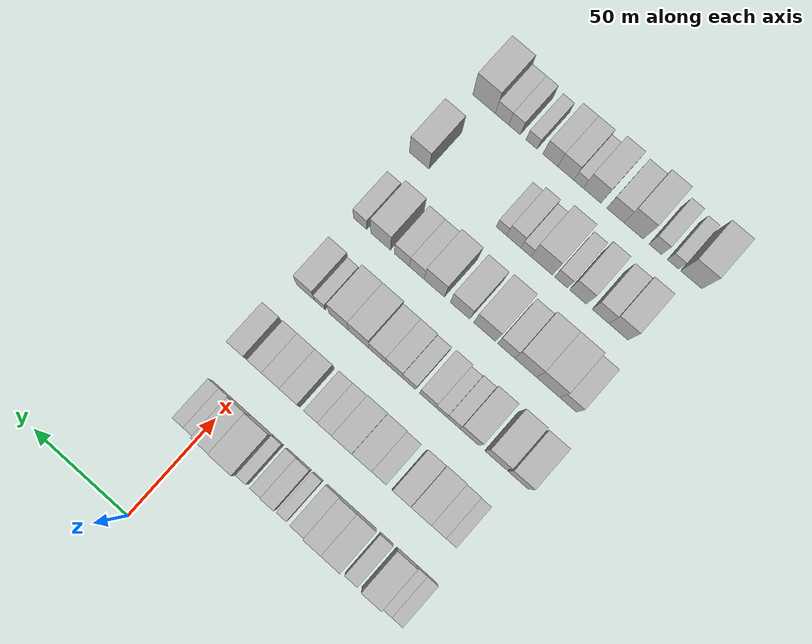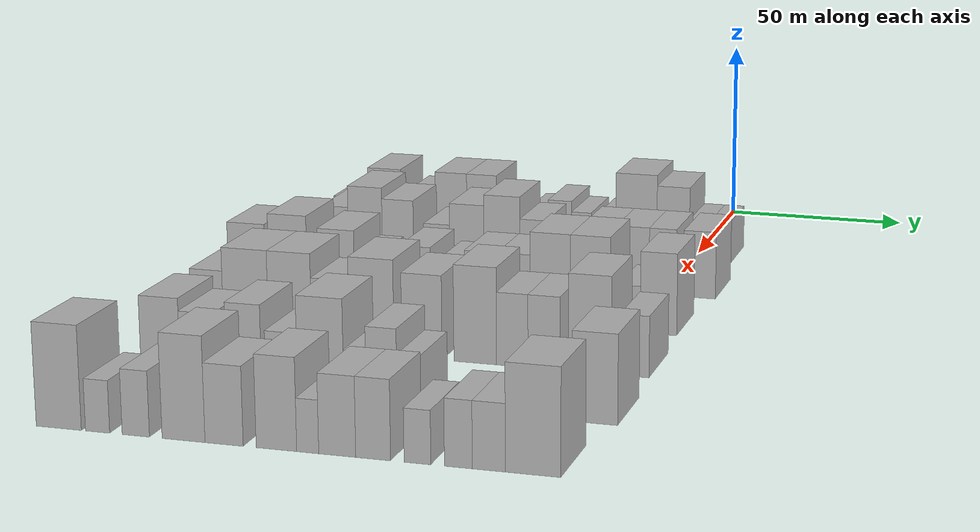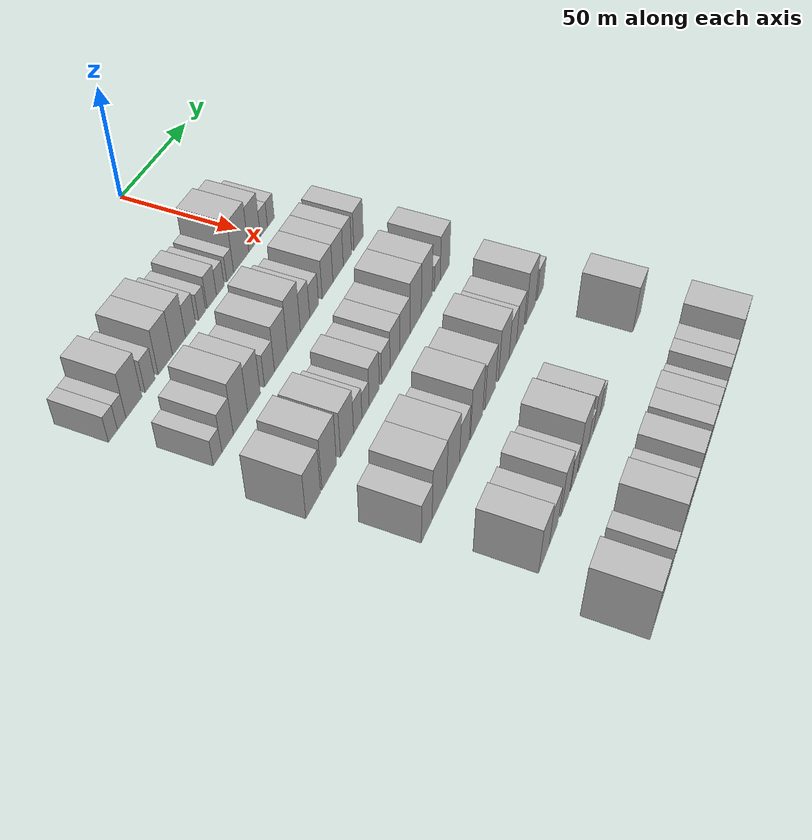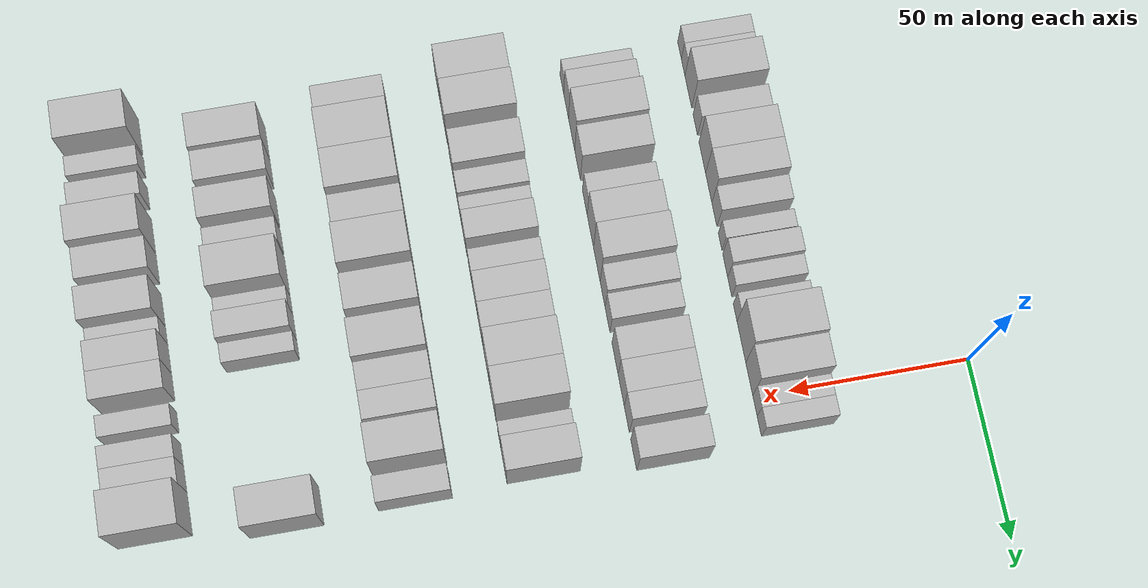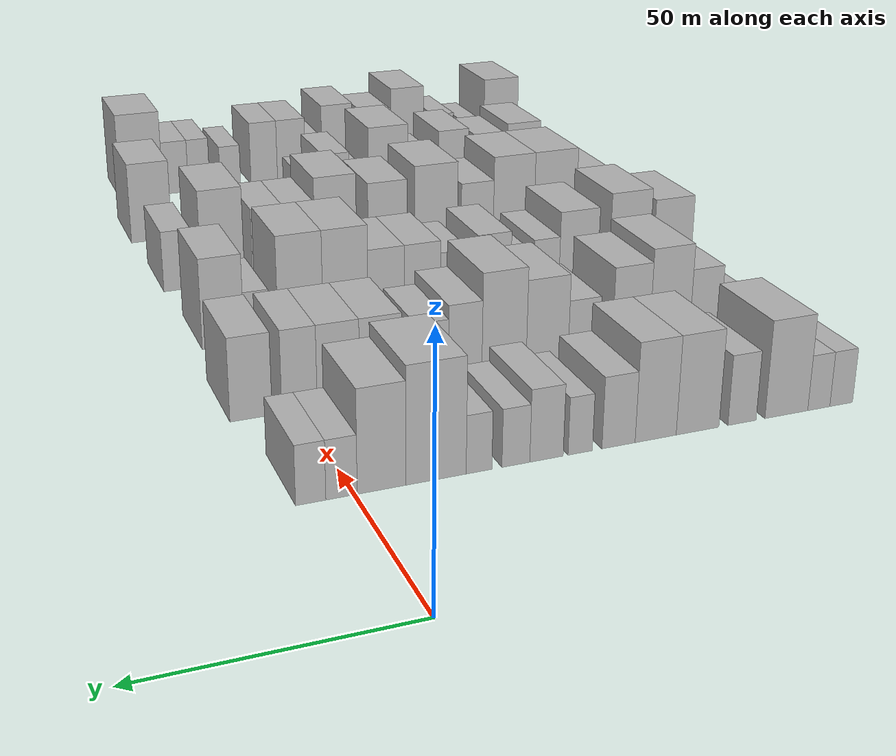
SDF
<sdf version="1.6">
 <world name="default">
  <model name="building_51">
   <static>1</static>
   <pose>50.0000 -102.8094 0 0.000000 0.000000 0.000000</pose>
   <link name="link">
    <pose>0 0 6.00 0 0 0</pose>
    <collision name="collision"><geometry><box><size>20.0000 5.3729 12.0000</size></box></geometry></collision>
    <visual name="visual">
     <cast_shadows>0</cast_shadows>
     <geometry><box><size>20.0000 5.3729 12.0000</size></box></geometry>
     <material>
      <script>
       <uri>model://HANNAS_wall/materials/scripts</uri>
       <uri>model://HANNAS_wall/materials/textures</uri>
       <name>vrc/HANNAS_wall</name>
      </script>
     </material>
    </visual>
   </link>
  </model>
  <model name="building_52">
   <static>1</static>
   <pose>50.0000 -97.5383 0 0.000000 0.000000 0.000000</pose>
   <link name="link">
    <pose>0 0 6.00 0 0 0</pose>
    <collision name="collision"><geometry><box><size>20.0000 5.1693 12.0000</size></box></geometry></collision>
    <visual name="visual">
     <cast_shadows>0</cast_shadows>
     <geometry><box><size>20.0000 5.1693 12.0000</size></box></geometry>
     <material>
      <script>
       <uri>model://HANNAS_wall/materials/scripts</uri>
       <uri>model://HANNAS_wall/materials/textures</uri>
       <name>vrc/HANNAS_wall</name>
      </script>
     </material>
    </visual>
   </link>
  </model>
  <model name="building_53">
   <static>1</static>
   <pose>50.0000 -90.0143 0 0.000000 0.000000 0.000000</pose>
   <link name="link">
    <pose>0 0 10.50 0 0 0</pose>
    <collision name="collision"><geometry><box><size>20.0000 9.8788 21.0000</size></box></geometry></collision>
    <visual name="visual">
     <cast_shadows>0</cast_shadows>
     <geometry><box><size>20.0000 9.8788 21.0000</size></box></geometry>
     <material>
      <script>
       <uri>model://HANNAS_wall/materials/scripts</uri>
       <uri>model://HANNAS_wall/materials/textures</uri>
       <name>vrc/HANNAS_wall</name>
      </script>
     </material>
    </visual>
   </link>
  </model>
  <model name="building_54">
   <static>1</static>
   <pose>50.0000 -79.8948 0 0.000000 0.000000 0.000000</pose>
   <link name="link">
    <pose>0 0 7.50 0 0 0</pose>
    <collision name="collision"><geometry><box><size>20.0000 6.3601 15.0000</size></box></geometry></collision>
    <visual name="visual">
     <cast_shadows>0</cast_shadows>
     <geometry><box><size>20.0000 6.3601 15.0000</size></box></geometry>
     <material>
      <script>
       <uri>model://HANNAS_wall/materials/scripts</uri>
       <uri>model://HANNAS_wall/materials/textures</uri>
       <name>vrc/HANNAS_wall</name>
      </script>
     </material>
    </visual>
   </link>
  </model>
  <model name="building_55">
   <static>1</static>
   <pose>50.0000 -69.9966 0 0.000000 0.000000 0.000000</pose>
   <link name="link">
    <pose>0 0 10.50 0 0 0</pose>
    <collision name="collision"><geometry><box><size>20.0000 9.4364 21.0000</size></box></geometry></collision>
    <visual name="visual">
     <cast_shadows>0</cast_shadows>
     <geometry><box><size>20.0000 9.4364 21.0000</size></box></geometry>
     <material>
      <script>
       <uri>model://HANNAS_wall/materials/scripts</uri>
       <uri>model://HANNAS_wall/materials/textures</uri>
       <name>vrc/HANNAS_wall</name>
      </script>
     </material>
    </visual>
   </link>
  </model>
  <model name="building_56">
   <static>1</static>
   <pose>50.0000 -60.8362 0 0.000000 0.000000 0.000000</pose>
   <link name="link">
    <pose>0 0 10.50 0 0 0</pose>
    <collision name="collision"><geometry><box><size>20.0000 8.8844 21.0000</size></box></geometry></collision>
    <visual name="visual">
     <cast_shadows>0</cast_shadows>
     <geometry><box><size>20.0000 8.8844 21.0000</size></box></geometry>
     <material>
      <script>
       <uri>model://HANNAS_wall/materials/scripts</uri>
       <uri>model://HANNAS_wall/materials/textures</uri>
       <name>vrc/HANNAS_wall</name>
      </script>
     </material>
    </visual>
   </link>
  </model>
  <model name="building_57">
   <static>1</static>
   <pose>50.0000 -52.8686 0 0.000000 0.000000 0.000000</pose>
   <link name="link">
    <pose>0 0 7.50 0 0 0</pose>
    <collision name="collision"><geometry><box><size>20.0000 7.0507 15.0000</size></box></geometry></collision>
    <visual name="visual">
     <cast_shadows>0</cast_shadows>
     <geometry><box><size>20.0000 7.0507 15.0000</size></box></geometry>
     <material>
      <script>
       <uri>model://HANNAS_wall/materials/scripts</uri>
       <uri>model://HANNAS_wall/materials/textures</uri>
       <name>vrc/HANNAS_wall</name>
      </script>
     </material>
    </visual>
   </link>
  </model>
  <model name="building_58">
   <static>1</static>
   <pose>50.0000 -44.7985 0 0.000000 0.000000 0.000000</pose>
   <link name="link">
    <pose>0 0 6.00 0 0 0</pose>
    <collision name="collision"><geometry><box><size>20.0000 5.0895 12.0000</size></box></geometry></collision>
    <visual name="visual">
     <cast_shadows>0</cast_shadows>
     <geometry><box><size>20.0000 5.0895 12.0000</size></box></geometry>
     <material>
      <script>
       <uri>model://HANNAS_wall/materials/scripts</uri>
       <uri>model://HANNAS_wall/materials/textures</uri>
       <name>vrc/HANNAS_wall</name>
      </script>
     </material>
    </visual>
   </link>
  </model>
  <model name="building_59">
   <static>1</static>
   <pose>50.0000 -37.8196 0 0.000000 0.000000 0.000000</pose>
   <link name="link">
    <pose>0 0 7.50 0 0 0</pose>
    <collision name="collision"><geometry><box><size>20.0000 6.8684 15.0000</size></box></geometry></collision>
    <visual name="visual">
     <cast_shadows>0</cast_shadows>
     <geometry><box><size>20.0000 6.8684 15.0000</size></box></geometry>
     <material>
      <script>
       <uri>model://HANNAS_wall/materials/scripts</uri>
       <uri>model://HANNAS_wall/materials/textures</uri>
       <name>vrc/HANNAS_wall</name>
      </script>
     </material>
    </visual>
   </link>
  </model>
  <model name="building_60">
   <static>1</static>
   <pose>50.0000 -31.5643 0 0.000000 0.000000 0.000000</pose>
   <link name="link">
    <pose>0 0 6.00 0 0 0</pose>
    <collision name="collision"><geometry><box><size>20.0000 5.6422 12.0000</size></box></geometry></collision>
    <visual name="visual">
     <cast_shadows>0</cast_shadows>
     <geometry><box><size>20.0000 5.6422 12.0000</size></box></geometry>
     <material>
      <script>
       <uri>model://HANNAS_wall/materials/scripts</uri>
       <uri>model://HANNAS_wall/materials/textures</uri>
       <name>vrc/HANNAS_wall</name>
      </script>
     </material>
    </visual>
   </link>
  </model>
  <model name="building_61">
   <static>1</static>
   <pose>50.0000 -24.1740 0 0.000000 0.000000 0.000000</pose>
   <link name="link">
    <pose>0 0 6.00 0 0 0</pose>
    <collision name="collision"><geometry><box><size>20.0000 5.1384 12.0000</size></box></geometry></collision>
    <visual name="visual">
     <cast_shadows>0</cast_shadows>
     <geometry><box><size>20.0000 5.1384 12.0000</size></box></geometry>
     <material>
      <script>
       <uri>model://HANNAS_wall/materials/scripts</uri>
       <uri>model://HANNAS_wall/materials/textures</uri>
       <name>vrc/HANNAS_wall</name>
      </script>
     </material>
    </visual>
   </link>
  </model>
  <model name="building_62">
   <static>1</static>
   <pose>50.0000 -15.7153 0 0.000000 0.000000 0.000000</pose>
   <link name="link">
    <pose>0 0 12.00 0 0 0</pose>
    <collision name="collision"><geometry><box><size>20.0000 11.7789 24.0000</size></box></geometry></collision>
    <visual name="visual">
     <cast_shadows>0</cast_shadows>
     <geometry><box><size>20.0000 11.7789 24.0000</size></box></geometry>
     <material>
      <script>
       <uri>model://HANNAS_wall/materials/scripts</uri>
       <uri>model://HANNAS_wall/materials/textures</uri>
       <name>vrc/HANNAS_wall</name>
      </script>
     </material>
    </visual>
   </link>
  </model>
  <model name="building_63">
   <static>1</static>
   <pose>50.0000 -5.1954 0 0.000000 0.000000 0.000000</pose>
   <link name="link">
    <pose>0 0 10.50 0 0 0</pose>
    <collision name="collision"><geometry><box><size>20.0000 9.2609 21.0000</size></box></geometry></collision>
    <visual name="visual">
     <cast_shadows>0</cast_shadows>
     <geometry><box><size>20.0000 9.2609 21.0000</size></box></geometry>
     <material>
      <script>
       <uri>model://HANNAS_wall/materials/scripts</uri>
       <uri>model://HANNAS_wall/materials/textures</uri>
       <name>vrc/HANNAS_wall</name>
      </script>
     </material>
    </visual>
   </link>
  </model>
  <model name="building_64">
   <static>1</static>
   <pose>50.0000 2.3669 0 0.000000 0.000000 0.000000</pose>
   <link name="link">
    <pose>0 0 6.00 0 0 0</pose>
    <collision name="collision"><geometry><box><size>20.0000 5.8637 12.0000</size></box></geometry></collision>
    <visual name="visual">
     <cast_shadows>0</cast_shadows>
     <geometry><box><size>20.0000 5.8637 12.0000</size></box></geometry>
     <material>
      <script>
       <uri>model://HANNAS_wall/materials/scripts</uri>
       <uri>model://HANNAS_wall/materials/textures</uri>
       <name>vrc/HANNAS_wall</name>
      </script>
     </material>
    </visual>
   </link>
  </model>
  <model name="building_65">
   <static>1</static>
   <pose>50.0000 8.0992 0 0.000000 0.000000 0.000000</pose>
   <link name="link">
    <pose>0 0 6.00 0 0 0</pose>
    <collision name="collision"><geometry><box><size>20.0000 5.6008 12.0000</size></box></geometry></collision>
    <visual name="visual">
     <cast_shadows>0</cast_shadows>
     <geometry><box><size>20.0000 5.6008 12.0000</size></box></geometry>
     <material>
      <script>
       <uri>model://HANNAS_wall/materials/scripts</uri>
       <uri>model://HANNAS_wall/materials/textures</uri>
       <name>vrc/HANNAS_wall</name>
      </script>
     </material>
    </visual>
   </link>
  </model>
  <model name="building_177">
   <static>1</static>
   <pose>85.0000 -98.4689 0 0.000000 0.000000 0.000000</pose>
   <link name="link">
    <pose>0 0 6.00 0 0 0</pose>
    <collision name="collision"><geometry><box><size>20.0000 5.6673 12.0000</size></box></geometry></collision>
    <visual name="visual">
     <cast_shadows>0</cast_shadows>
     <geometry><box><size>20.0000 5.6673 12.0000</size></box></geometry>
     <material>
      <script>
       <uri>model://HANNAS_wall/materials/scripts</uri>
       <uri>model://HANNAS_wall/materials/textures</uri>
       <name>vrc/HANNAS_wall</name>
      </script>
     </material>
    </visual>
   </link>
  </model>
  <model name="building_178">
   <static>1</static>
   <pose>85.0000 -91.8178 0 0.000000 0.000000 0.000000</pose>
   <link name="link">
    <pose>0 0 9.00 0 0 0</pose>
    <collision name="collision"><geometry><box><size>20.0000 7.6349 18.0000</size></box></geometry></collision>
    <visual name="visual">
     <cast_shadows>0</cast_shadows>
     <geometry><box><size>20.0000 7.6349 18.0000</size></box></geometry>
     <material>
      <script>
       <uri>model://HANNAS_wall/materials/scripts</uri>
       <uri>model://HANNAS_wall/materials/textures</uri>
       <name>vrc/HANNAS_wall</name>
      </script>
     </material>
    </visual>
   </link>
  </model>
  <model name="building_179">
   <static>1</static>
   <pose>85.0000 -83.1043 0 0.000000 0.000000 0.000000</pose>
   <link name="link">
    <pose>0 0 12.00 0 0 0</pose>
    <collision name="collision"><geometry><box><size>20.0000 9.7921 24.0000</size></box></geometry></collision>
    <visual name="visual">
     <cast_shadows>0</cast_shadows>
     <geometry><box><size>20.0000 9.7921 24.0000</size></box></geometry>
     <material>
      <script>
       <uri>model://HANNAS_wall/materials/scripts</uri>
       <uri>model://HANNAS_wall/materials/textures</uri>
       <name>vrc/HANNAS_wall</name>
      </script>
     </material>
    </visual>
   </link>
  </model>
  <model name="building_180">
   <static>1</static>
   <pose>85.0000 -73.7333 0 0.000000 0.000000 0.000000</pose>
   <link name="link">
    <pose>0 0 10.50 0 0 0</pose>
    <collision name="collision"><geometry><box><size>20.0000 8.9498 21.0000</size></box></geometry></collision>
    <visual name="visual">
     <cast_shadows>0</cast_shadows>
     <geometry><box><size>20.0000 8.9498 21.0000</size></box></geometry>
     <material>
      <script>
       <uri>model://HANNAS_wall/materials/scripts</uri>
       <uri>model://HANNAS_wall/materials/textures</uri>
       <name>vrc/HANNAS_wall</name>
      </script>
     </material>
    </visual>
   </link>
  </model>
  <model name="building_181">
   <static>1</static>
   <pose>85.0000 -62.6039 0 0.000000 0.000000 0.000000</pose>
   <link name="link">
    <pose>0 0 7.50 0 0 0</pose>
    <collision name="collision"><geometry><box><size>20.0000 7.3091 15.0000</size></box></geometry></collision>
    <visual name="visual">
     <cast_shadows>0</cast_shadows>
     <geometry><box><size>20.0000 7.3091 15.0000</size></box></geometry>
     <material>
      <script>
       <uri>model://HANNAS_wall/materials/scripts</uri>
       <uri>model://HANNAS_wall/materials/textures</uri>
       <name>vrc/HANNAS_wall</name>
      </script>
     </material>
    </visual>
   </link>
  </model>
  <model name="building_182">
   <static>1</static>
   <pose>85.0000 -54.1118 0 0.000000 0.000000 0.000000</pose>
   <link name="link">
    <pose>0 0 10.50 0 0 0</pose>
    <collision name="collision"><geometry><box><size>20.0000 9.6751 21.0000</size></box></geometry></collision>
    <visual name="visual">
     <cast_shadows>0</cast_shadows>
     <geometry><box><size>20.0000 9.6751 21.0000</size></box></geometry>
     <material>
      <script>
       <uri>model://HANNAS_wall/materials/scripts</uri>
       <uri>model://HANNAS_wall/materials/textures</uri>
       <name>vrc/HANNAS_wall</name>
      </script>
     </material>
    </visual>
   </link>
  </model>
  <model name="building_183">
   <static>1</static>
   <pose>85.0000 -44.2620 0 0.000000 0.000000 0.000000</pose>
   <link name="link">
    <pose>0 0 12.00 0 0 0</pose>
    <collision name="collision"><geometry><box><size>20.0000 10.0246 24.0000</size></box></geometry></collision>
    <visual name="visual">
     <cast_shadows>0</cast_shadows>
     <geometry><box><size>20.0000 10.0246 24.0000</size></box></geometry>
     <material>
      <script>
       <uri>model://HANNAS_wall/materials/scripts</uri>
       <uri>model://HANNAS_wall/materials/textures</uri>
       <name>vrc/HANNAS_wall</name>
      </script>
     </material>
    </visual>
   </link>
  </model>
  <model name="building_184">
   <static>1</static>
   <pose>85.0000 -35.5402 0 0.000000 0.000000 0.000000</pose>
   <link name="link">
    <pose>0 0 9.00 0 0 0</pose>
    <collision name="collision"><geometry><box><size>20.0000 7.4190 18.0000</size></box></geometry></collision>
    <visual name="visual">
     <cast_shadows>0</cast_shadows>
     <geometry><box><size>20.0000 7.4190 18.0000</size></box></geometry>
     <material>
      <script>
       <uri>model://HANNAS_wall/materials/scripts</uri>
       <uri>model://HANNAS_wall/materials/textures</uri>
       <name>vrc/HANNAS_wall</name>
      </script>
     </material>
    </visual>
   </link>
  </model>
  <model name="building_185">
   <static>1</static>
   <pose>85.0000 -28.2389 0 0.000000 0.000000 0.000000</pose>
   <link name="link">
    <pose>0 0 7.50 0 0 0</pose>
    <collision name="collision"><geometry><box><size>20.0000 7.1835 15.0000</size></box></geometry></collision>
    <visual name="visual">
     <cast_shadows>0</cast_shadows>
     <geometry><box><size>20.0000 7.1835 15.0000</size></box></geometry>
     <material>
      <script>
       <uri>model://HANNAS_wall/materials/scripts</uri>
       <uri>model://HANNAS_wall/materials/textures</uri>
       <name>vrc/HANNAS_wall</name>
      </script>
     </material>
    </visual>
   </link>
  </model>
  <model name="building_186">
   <static>1</static>
   <pose>85.0000 -17.1510 0 0.000000 0.000000 0.000000</pose>
   <link name="link">
    <pose>0 0 9.00 0 0 0</pose>
    <collision name="collision"><geometry><box><size>20.0000 8.9924 18.0000</size></box></geometry></collision>
    <visual name="visual">
     <cast_shadows>0</cast_shadows>
     <geometry><box><size>20.0000 8.9924 18.0000</size></box></geometry>
     <material>
      <script>
       <uri>model://HANNAS_wall/materials/scripts</uri>
       <uri>model://HANNAS_wall/materials/textures</uri>
       <name>vrc/HANNAS_wall</name>
      </script>
     </material>
    </visual>
   </link>
  </model>
  <model name="building_187">
   <static>1</static>
   <pose>85.0000 -8.1791 0 0.000000 0.000000 0.000000</pose>
   <link name="link">
    <pose>0 0 9.00 0 0 0</pose>
    <collision name="collision"><geometry><box><size>20.0000 8.9515 18.0000</size></box></geometry></collision>
    <visual name="visual">
     <cast_shadows>0</cast_shadows>
     <geometry><box><size>20.0000 8.9515 18.0000</size></box></geometry>
     <material>
      <script>
       <uri>model://HANNAS_wall/materials/scripts</uri>
       <uri>model://HANNAS_wall/materials/textures</uri>
       <name>vrc/HANNAS_wall</name>
      </script>
     </material>
    </visual>
   </link>
  </model>
  <model name="building_188">
   <static>1</static>
   <pose>85.0000 -0.0435 0 0.000000 0.000000 0.000000</pose>
   <link name="link">
    <pose>0 0 9.00 0 0 0</pose>
    <collision name="collision"><geometry><box><size>20.0000 7.3195 18.0000</size></box></geometry></collision>
    <visual name="visual">
     <cast_shadows>0</cast_shadows>
     <geometry><box><size>20.0000 7.3195 18.0000</size></box></geometry>
     <material>
      <script>
       <uri>model://HANNAS_wall/materials/scripts</uri>
       <uri>model://HANNAS_wall/materials/textures</uri>
       <name>vrc/HANNAS_wall</name>
      </script>
     </material>
    </visual>
   </link>
  </model>
  <model name="building_189">
   <static>1</static>
   <pose>85.0000 9.8961 0 0.000000 0.000000 0.000000</pose>
   <link name="link">
    <pose>0 0 9.00 0 0 0</pose>
    <collision name="collision"><geometry><box><size>20.0000 8.5598 18.0000</size></box></geometry></collision>
    <visual name="visual">
     <cast_shadows>0</cast_shadows>
     <geometry><box><size>20.0000 8.5598 18.0000</size></box></geometry>
     <material>
      <script>
       <uri>model://HANNAS_wall/materials/scripts</uri>
       <uri>model://HANNAS_wall/materials/textures</uri>
       <name>vrc/HANNAS_wall</name>
      </script>
     </material>
    </visual>
   </link>
  </model>
  <model name="building_302">
   <static>1</static>
   <pose>120.0000 -103.1380 0 0.000000 0.000000 0.000000</pose>
   <link name="link">
    <pose>0 0 10.50 0 0 0</pose>
    <collision name="collision"><geometry><box><size>20.0000 10.3689 21.0000</size></box></geometry></collision>
    <visual name="visual">
     <cast_shadows>0</cast_shadows>
     <geometry><box><size>20.0000 10.3689 21.0000</size></box></geometry>
     <material>
      <script>
       <uri>model://HANNAS_wall/materials/scripts</uri>
       <uri>model://HANNAS_wall/materials/textures</uri>
       <name>vrc/HANNAS_wall</name>
      </script>
     </material>
    </visual>
   </link>
  </model>
  <model name="building_303">
   <static>1</static>
   <pose>120.0000 -91.6294 0 0.000000 0.000000 0.000000</pose>
   <link name="link">
    <pose>0 0 12.00 0 0 0</pose>
    <collision name="collision"><geometry><box><size>20.0000 10.6484 24.0000</size></box></geometry></collision>
    <visual name="visual">
     <cast_shadows>0</cast_shadows>
     <geometry><box><size>20.0000 10.6484 24.0000</size></box></geometry>
     <material>
      <script>
       <uri>model://HANNAS_wall/materials/scripts</uri>
       <uri>model://HANNAS_wall/materials/textures</uri>
       <name>vrc/HANNAS_wall</name>
      </script>
     </material>
    </visual>
   </link>
  </model>
  <model name="building_304">
   <static>1</static>
   <pose>120.0000 -78.3010 0 0.000000 0.000000 0.000000</pose>
   <link name="link">
    <pose>0 0 10.50 0 0 0</pose>
    <collision name="collision"><geometry><box><size>20.0000 10.0083 21.0000</size></box></geometry></collision>
    <visual name="visual">
     <cast_shadows>0</cast_shadows>
     <geometry><box><size>20.0000 10.0083 21.0000</size></box></geometry>
     <material>
      <script>
       <uri>model://HANNAS_wall/materials/scripts</uri>
       <uri>model://HANNAS_wall/materials/textures</uri>
       <name>vrc/HANNAS_wall</name>
      </script>
     </material>
    </visual>
   </link>
  </model>
  <model name="building_305">
   <static>1</static>
   <pose>120.0000 -70.0165 0 0.000000 0.000000 0.000000</pose>
   <link name="link">
    <pose>0 0 7.50 0 0 0</pose>
    <collision name="collision"><geometry><box><size>20.0000 6.5608 15.0000</size></box></geometry></collision>
    <visual name="visual">
     <cast_shadows>0</cast_shadows>
     <geometry><box><size>20.0000 6.5608 15.0000</size></box></geometry>
     <material>
      <script>
       <uri>model://HANNAS_wall/materials/scripts</uri>
       <uri>model://HANNAS_wall/materials/textures</uri>
       <name>vrc/HANNAS_wall</name>
      </script>
     </material>
    </visual>
   </link>
  </model>
  <model name="building_306">
   <static>1</static>
   <pose>120.0000 -63.8612 0 0.000000 0.000000 0.000000</pose>
   <link name="link">
    <pose>0 0 6.00 0 0 0</pose>
    <collision name="collision"><geometry><box><size>20.0000 5.7497 12.0000</size></box></geometry></collision>
    <visual name="visual">
     <cast_shadows>0</cast_shadows>
     <geometry><box><size>20.0000 5.7497 12.0000</size></box></geometry>
     <material>
      <script>
       <uri>model://HANNAS_wall/materials/scripts</uri>
       <uri>model://HANNAS_wall/materials/textures</uri>
       <name>vrc/HANNAS_wall</name>
      </script>
     </material>
    </visual>
   </link>
  </model>
  <model name="building_307">
   <static>1</static>
   <pose>120.0000 -56.8331 0 0.000000 0.000000 0.000000</pose>
   <link name="link">
    <pose>0 0 9.00 0 0 0</pose>
    <collision name="collision"><geometry><box><size>20.0000 8.3064 18.0000</size></box></geometry></collision>
    <visual name="visual">
     <cast_shadows>0</cast_shadows>
     <geometry><box><size>20.0000 8.3064 18.0000</size></box></geometry>
     <material>
      <script>
       <uri>model://HANNAS_wall/materials/scripts</uri>
       <uri>model://HANNAS_wall/materials/textures</uri>
       <name>vrc/HANNAS_wall</name>
      </script>
     </material>
    </visual>
   </link>
  </model>
  <model name="building_308">
   <static>1</static>
   <pose>120.0000 -47.1282 0 0.000000 0.000000 0.000000</pose>
   <link name="link">
    <pose>0 0 7.50 0 0 0</pose>
    <collision name="collision"><geometry><box><size>20.0000 7.1034 15.0000</size></box></geometry></collision>
    <visual name="visual">
     <cast_shadows>0</cast_shadows>
     <geometry><box><size>20.0000 7.1034 15.0000</size></box></geometry>
     <material>
      <script>
       <uri>model://HANNAS_wall/materials/scripts</uri>
       <uri>model://HANNAS_wall/materials/textures</uri>
       <name>vrc/HANNAS_wall</name>
      </script>
     </material>
    </visual>
   </link>
  </model>
  <model name="building_309">
   <static>1</static>
   <pose>120.0000 -39.2617 0 0.000000 0.000000 0.000000</pose>
   <link name="link">
    <pose>0 0 9.00 0 0 0</pose>
    <collision name="collision"><geometry><box><size>20.0000 8.6298 18.0000</size></box></geometry></collision>
    <visual name="visual">
     <cast_shadows>0</cast_shadows>
     <geometry><box><size>20.0000 8.6298 18.0000</size></box></geometry>
     <material>
      <script>
       <uri>model://HANNAS_wall/materials/scripts</uri>
       <uri>model://HANNAS_wall/materials/textures</uri>
       <name>vrc/HANNAS_wall</name>
      </script>
     </material>
    </visual>
   </link>
  </model>
  <model name="building_310">
   <static>1</static>
   <pose>120.0000 -30.5913 0 0.000000 0.000000 0.000000</pose>
   <link name="link">
    <pose>0 0 9.00 0 0 0</pose>
    <collision name="collision"><geometry><box><size>20.0000 8.7109 18.0000</size></box></geometry></collision>
    <visual name="visual">
     <cast_shadows>0</cast_shadows>
     <geometry><box><size>20.0000 8.7109 18.0000</size></box></geometry>
     <material>
      <script>
       <uri>model://HANNAS_wall/materials/scripts</uri>
       <uri>model://HANNAS_wall/materials/textures</uri>
       <name>vrc/HANNAS_wall</name>
      </script>
     </material>
    </visual>
   </link>
  </model>
  <model name="building_311">
   <static>1</static>
   <pose>120.0000 -20.9619 0 0.000000 0.000000 0.000000</pose>
   <link name="link">
    <pose>0 0 12.00 0 0 0</pose>
    <collision name="collision"><geometry><box><size>20.0000 10.5479 24.0000</size></box></geometry></collision>
    <visual name="visual">
     <cast_shadows>0</cast_shadows>
     <geometry><box><size>20.0000 10.5479 24.0000</size></box></geometry>
     <material>
      <script>
       <uri>model://HANNAS_wall/materials/scripts</uri>
       <uri>model://HANNAS_wall/materials/textures</uri>
       <name>vrc/HANNAS_wall</name>
      </script>
     </material>
    </visual>
   </link>
  </model>
  <model name="building_312">
   <static>1</static>
   <pose>120.0000 -10.5090 0 0.000000 0.000000 0.000000</pose>
   <link name="link">
    <pose>0 0 12.00 0 0 0</pose>
    <collision name="collision"><geometry><box><size>20.0000 10.3579 24.0000</size></box></geometry></collision>
    <visual name="visual">
     <cast_shadows>0</cast_shadows>
     <geometry><box><size>20.0000 10.3579 24.0000</size></box></geometry>
     <material>
      <script>
       <uri>model://HANNAS_wall/materials/scripts</uri>
       <uri>model://HANNAS_wall/materials/textures</uri>
       <name>vrc/HANNAS_wall</name>
      </script>
     </material>
    </visual>
   </link>
  </model>
  <model name="building_313">
   <static>1</static>
   <pose>120.0000 -0.4878 0 0.000000 0.000000 0.000000</pose>
   <link name="link">
    <pose>0 0 6.00 0 0 0</pose>
    <collision name="collision"><geometry><box><size>20.0000 5.6844 12.0000</size></box></geometry></collision>
    <visual name="visual">
     <cast_shadows>0</cast_shadows>
     <geometry><box><size>20.0000 5.6844 12.0000</size></box></geometry>
     <material>
      <script>
       <uri>model://HANNAS_wall/materials/scripts</uri>
       <uri>model://HANNAS_wall/materials/textures</uri>
       <name>vrc/HANNAS_wall</name>
      </script>
     </material>
    </visual>
   </link>
  </model>
  <model name="building_314">
   <static>1</static>
   <pose>120.0000 7.0255 0 0.000000 0.000000 0.000000</pose>
   <link name="link">
    <pose>0 0 10.50 0 0 0</pose>
    <collision name="collision"><geometry><box><size>20.0000 9.3422 21.0000</size></box></geometry></collision>
    <visual name="visual">
     <cast_shadows>0</cast_shadows>
     <geometry><box><size>20.0000 9.3422 21.0000</size></box></geometry>
     <material>
      <script>
       <uri>model://HANNAS_wall/materials/scripts</uri>
       <uri>model://HANNAS_wall/materials/textures</uri>
       <name>vrc/HANNAS_wall</name>
      </script>
     </material>
    </visual>
   </link>
  </model>
  <model name="building_433">
   <static>1</static>
   <pose>155.0000 -98.9779 0 0.000000 0.000000 0.000000</pose>
   <link name="link">
    <pose>0 0 9.00 0 0 0</pose>
    <collision name="collision"><geometry><box><size>20.0000 8.6512 18.0000</size></box></geometry></collision>
    <visual name="visual">
     <cast_shadows>0</cast_shadows>
     <geometry><box><size>20.0000 8.6512 18.0000</size></box></geometry>
     <material>
      <script>
       <uri>model://HANNAS_wall/materials/scripts</uri>
       <uri>model://HANNAS_wall/materials/textures</uri>
       <name>vrc/HANNAS_wall</name>
      </script>
     </material>
    </visual>
   </link>
  </model>
  <model name="building_434">
   <static>1</static>
   <pose>155.0000 -88.7057 0 0.000000 0.000000 0.000000</pose>
   <link name="link">
    <pose>0 0 12.00 0 0 0</pose>
    <collision name="collision"><geometry><box><size>20.0000 11.8933 24.0000</size></box></geometry></collision>
    <visual name="visual">
     <cast_shadows>0</cast_shadows>
     <geometry><box><size>20.0000 11.8933 24.0000</size></box></geometry>
     <material>
      <script>
       <uri>model://HANNAS_wall/materials/scripts</uri>
       <uri>model://HANNAS_wall/materials/textures</uri>
       <name>vrc/HANNAS_wall</name>
      </script>
     </material>
    </visual>
   </link>
  </model>
  <model name="building_435">
   <static>1</static>
   <pose>155.0000 -77.1176 0 0.000000 0.000000 0.000000</pose>
   <link name="link">
    <pose>0 0 12.00 0 0 0</pose>
    <collision name="collision"><geometry><box><size>20.0000 11.2829 24.0000</size></box></geometry></collision>
    <visual name="visual">
     <cast_shadows>0</cast_shadows>
     <geometry><box><size>20.0000 11.2829 24.0000</size></box></geometry>
     <material>
      <script>
       <uri>model://HANNAS_wall/materials/scripts</uri>
       <uri>model://HANNAS_wall/materials/textures</uri>
       <name>vrc/HANNAS_wall</name>
      </script>
     </material>
    </visual>
   </link>
  </model>
  <model name="building_436">
   <static>1</static>
   <pose>155.0000 -67.0982 0 0.000000 0.000000 0.000000</pose>
   <link name="link">
    <pose>0 0 9.00 0 0 0</pose>
    <collision name="collision"><geometry><box><size>20.0000 8.7557 18.0000</size></box></geometry></collision>
    <visual name="visual">
     <cast_shadows>0</cast_shadows>
     <geometry><box><size>20.0000 8.7557 18.0000</size></box></geometry>
     <material>
      <script>
       <uri>model://HANNAS_wall/materials/scripts</uri>
       <uri>model://HANNAS_wall/materials/textures</uri>
       <name>vrc/HANNAS_wall</name>
      </script>
     </material>
    </visual>
   </link>
  </model>
  <model name="building_437">
   <static>1</static>
   <pose>155.0000 -55.9960 0 0.000000 0.000000 0.000000</pose>
   <link name="link">
    <pose>0 0 12.00 0 0 0</pose>
    <collision name="collision"><geometry><box><size>20.0000 11.4488 24.0000</size></box></geometry></collision>
    <visual name="visual">
     <cast_shadows>0</cast_shadows>
     <geometry><box><size>20.0000 11.4488 24.0000</size></box></geometry>
     <material>
      <script>
       <uri>model://HANNAS_wall/materials/scripts</uri>
       <uri>model://HANNAS_wall/materials/textures</uri>
       <name>vrc/HANNAS_wall</name>
      </script>
     </material>
    </visual>
   </link>
  </model>
  <model name="building_438">
   <static>1</static>
   <pose>155.0000 -43.1745 0 0.000000 0.000000 0.000000</pose>
   <link name="link">
    <pose>0 0 10.50 0 0 0</pose>
    <collision name="collision"><geometry><box><size>20.0000 10.1943 21.0000</size></box></geometry></collision>
    <visual name="visual">
     <cast_shadows>0</cast_shadows>
     <geometry><box><size>20.0000 10.1943 21.0000</size></box></geometry>
     <material>
      <script>
       <uri>model://HANNAS_wall/materials/scripts</uri>
       <uri>model://HANNAS_wall/materials/textures</uri>
       <name>vrc/HANNAS_wall</name>
      </script>
     </material>
    </visual>
   </link>
  </model>
  <model name="building_439">
   <static>1</static>
   <pose>155.0000 -29.7411 0 0.000000 0.000000 0.000000</pose>
   <link name="link">
    <pose>0 0 12.00 0 0 0</pose>
    <collision name="collision"><geometry><box><size>20.0000 10.6724 24.0000</size></box></geometry></collision>
    <visual name="visual">
     <cast_shadows>0</cast_shadows>
     <geometry><box><size>20.0000 10.6724 24.0000</size></box></geometry>
     <material>
      <script>
       <uri>model://HANNAS_wall/materials/scripts</uri>
       <uri>model://HANNAS_wall/materials/textures</uri>
       <name>vrc/HANNAS_wall</name>
      </script>
     </material>
    </visual>
   </link>
  </model>
  <model name="building_440">
   <static>1</static>
   <pose>155.0000 -20.5011 0 0.000000 0.000000 0.000000</pose>
   <link name="link">
    <pose>0 0 9.00 0 0 0</pose>
    <collision name="collision"><geometry><box><size>20.0000 7.8076 18.0000</size></box></geometry></collision>
    <visual name="visual">
     <cast_shadows>0</cast_shadows>
     <geometry><box><size>20.0000 7.8076 18.0000</size></box></geometry>
     <material>
      <script>
       <uri>model://HANNAS_wall/materials/scripts</uri>
       <uri>model://HANNAS_wall/materials/textures</uri>
       <name>vrc/HANNAS_wall</name>
      </script>
     </material>
    </visual>
   </link>
  </model>
  <model name="building_441">
   <static>1</static>
   <pose>155.0000 -12.6420 0 0.000000 0.000000 0.000000</pose>
   <link name="link">
    <pose>0 0 9.00 0 0 0</pose>
    <collision name="collision"><geometry><box><size>20.0000 7.9105 18.0000</size></box></geometry></collision>
    <visual name="visual">
     <cast_shadows>0</cast_shadows>
     <geometry><box><size>20.0000 7.9105 18.0000</size></box></geometry>
     <material>
      <script>
       <uri>model://HANNAS_wall/materials/scripts</uri>
       <uri>model://HANNAS_wall/materials/textures</uri>
       <name>vrc/HANNAS_wall</name>
      </script>
     </material>
    </visual>
   </link>
  </model>
  <model name="building_442">
   <static>1</static>
   <pose>155.0000 -1.4177 0 0.000000 0.000000 0.000000</pose>
   <link name="link">
    <pose>0 0 12.00 0 0 0</pose>
    <collision name="collision"><geometry><box><size>20.0000 10.5380 24.0000</size></box></geometry></collision>
    <visual name="visual">
     <cast_shadows>0</cast_shadows>
     <geometry><box><size>20.0000 10.5380 24.0000</size></box></geometry>
     <material>
      <script>
       <uri>model://HANNAS_wall/materials/scripts</uri>
       <uri>model://HANNAS_wall/materials/textures</uri>
       <name>vrc/HANNAS_wall</name>
      </script>
     </material>
    </visual>
   </link>
  </model>
  <model name="building_443">
   <static>1</static>
   <pose>155.0000 9.4056 0 0.000000 0.000000 0.000000</pose>
   <link name="link">
    <pose>0 0 7.50 0 0 0</pose>
    <collision name="collision"><geometry><box><size>20.0000 7.1087 15.0000</size></box></geometry></collision>
    <visual name="visual">
     <cast_shadows>0</cast_shadows>
     <geometry><box><size>20.0000 7.1087 15.0000</size></box></geometry>
     <material>
      <script>
       <uri>model://HANNAS_wall/materials/scripts</uri>
       <uri>model://HANNAS_wall/materials/textures</uri>
       <name>vrc/HANNAS_wall</name>
      </script>
     </material>
    </visual>
   </link>
  </model>
  <model name="building_552">
   <static>1</static>
   <pose>190.0000 -95.2814 0 0.000000 0.000000 0.000000</pose>
   <link name="link">
    <pose>0 0 10.50 0 0 0</pose>
    <collision name="collision"><geometry><box><size>20.0000 9.8673 21.0000</size></box></geometry></collision>
    <visual name="visual">
     <cast_shadows>0</cast_shadows>
     <geometry><box><size>20.0000 9.8673 21.0000</size></box></geometry>
     <material>
      <script>
       <uri>model://HANNAS_wall/materials/scripts</uri>
       <uri>model://HANNAS_wall/materials/textures</uri>
       <name>vrc/HANNAS_wall</name>
      </script>
     </material>
    </visual>
   </link>
  </model>
  <model name="building_553">
   <static>1</static>
   <pose>190.0000 -86.0604 0 0.000000 0.000000 0.000000</pose>
   <link name="link">
    <pose>0 0 9.00 0 0 0</pose>
    <collision name="collision"><geometry><box><size>20.0000 8.5745 18.0000</size></box></geometry></collision>
    <visual name="visual">
     <cast_shadows>0</cast_shadows>
     <geometry><box><size>20.0000 8.5745 18.0000</size></box></geometry>
     <material>
      <script>
       <uri>model://HANNAS_wall/materials/scripts</uri>
       <uri>model://HANNAS_wall/materials/textures</uri>
       <name>vrc/HANNAS_wall</name>
      </script>
     </material>
    </visual>
   </link>
  </model>
  <model name="building_554">
   <static>1</static>
   <pose>190.0000 -74.4175 0 0.000000 0.000000 0.000000</pose>
   <link name="link">
    <pose>0 0 10.50 0 0 0</pose>
    <collision name="collision"><geometry><box><size>20.0000 8.7113 21.0000</size></box></geometry></collision>
    <visual name="visual">
     <cast_shadows>0</cast_shadows>
     <geometry><box><size>20.0000 8.7113 21.0000</size></box></geometry>
     <material>
      <script>
       <uri>model://HANNAS_wall/materials/scripts</uri>
       <uri>model://HANNAS_wall/materials/textures</uri>
       <name>vrc/HANNAS_wall</name>
      </script>
     </material>
    </visual>
   </link>
  </model>
  <model name="building_555">
   <static>1</static>
   <pose>190.0000 -65.6677 0 0.000000 0.000000 0.000000</pose>
   <link name="link">
    <pose>0 0 7.50 0 0 0</pose>
    <collision name="collision"><geometry><box><size>20.0000 6.7884 15.0000</size></box></geometry></collision>
    <visual name="visual">
     <cast_shadows>0</cast_shadows>
     <geometry><box><size>20.0000 6.7884 15.0000</size></box></geometry>
     <material>
      <script>
       <uri>model://HANNAS_wall/materials/scripts</uri>
       <uri>model://HANNAS_wall/materials/textures</uri>
       <name>vrc/HANNAS_wall</name>
      </script>
     </material>
    </visual>
   </link>
  </model>
  <model name="building_556">
   <static>1</static>
   <pose>190.0000 -55.6468 0 0.000000 0.000000 0.000000</pose>
   <link name="link">
    <pose>0 0 12.00 0 0 0</pose>
    <collision name="collision"><geometry><box><size>20.0000 11.2534 24.0000</size></box></geometry></collision>
    <visual name="visual">
     <cast_shadows>0</cast_shadows>
     <geometry><box><size>20.0000 11.2534 24.0000</size></box></geometry>
     <material>
      <script>
       <uri>model://HANNAS_wall/materials/scripts</uri>
       <uri>model://HANNAS_wall/materials/textures</uri>
       <name>vrc/HANNAS_wall</name>
      </script>
     </material>
    </visual>
   </link>
  </model>
  <model name="building_557">
   <static>1</static>
   <pose>190.0000 -47.3382 0 0.000000 0.000000 0.000000</pose>
   <link name="link">
    <pose>0 0 6.00 0 0 0</pose>
    <collision name="collision"><geometry><box><size>20.0000 5.3638 12.0000</size></box></geometry></collision>
    <visual name="visual">
     <cast_shadows>0</cast_shadows>
     <geometry><box><size>20.0000 5.3638 12.0000</size></box></geometry>
     <material>
      <script>
       <uri>model://HANNAS_wall/materials/scripts</uri>
       <uri>model://HANNAS_wall/materials/textures</uri>
       <name>vrc/HANNAS_wall</name>
      </script>
     </material>
    </visual>
   </link>
  </model>
  <model name="building_558">
   <static>1</static>
   <pose>190.0000 -40.9436 0 0.000000 0.000000 0.000000</pose>
   <link name="link">
    <pose>0 0 9.00 0 0 0</pose>
    <collision name="collision"><geometry><box><size>20.0000 7.4254 18.0000</size></box></geometry></collision>
    <visual name="visual">
     <cast_shadows>0</cast_shadows>
     <geometry><box><size>20.0000 7.4254 18.0000</size></box></geometry>
     <material>
      <script>
       <uri>model://HANNAS_wall/materials/scripts</uri>
       <uri>model://HANNAS_wall/materials/textures</uri>
       <name>vrc/HANNAS_wall</name>
      </script>
     </material>
    </visual>
   </link>
  </model>
  <model name="building_559">
   <static>1</static>
   <pose>190.0000 -34.5088 0 0.000000 0.000000 0.000000</pose>
   <link name="link">
    <pose>0 0 6.00 0 0 0</pose>
    <collision name="collision"><geometry><box><size>20.0000 5.4441 12.0000</size></box></geometry></collision>
    <visual name="visual">
     <cast_shadows>0</cast_shadows>
     <geometry><box><size>20.0000 5.4441 12.0000</size></box></geometry>
     <material>
      <script>
       <uri>model://HANNAS_wall/materials/scripts</uri>
       <uri>model://HANNAS_wall/materials/textures</uri>
       <name>vrc/HANNAS_wall</name>
      </script>
     </material>
    </visual>
   </link>
  </model>
  <model name="building_560">
   <static>1</static>
   <pose>190.0000 8.9475 0 0.000000 0.000000 0.000000</pose>
   <link name="link">
    <pose>0 0 10.50 0 0 0</pose>
    <collision name="collision"><geometry><box><size>20.0000 10.4895 21.0000</size></box></geometry></collision>
    <visual name="visual">
     <cast_shadows>0</cast_shadows>
     <geometry><box><size>20.0000 10.4895 21.0000</size></box></geometry>
     <material>
      <script>
       <uri>model://HANNAS_wall/materials/scripts</uri>
       <uri>model://HANNAS_wall/materials/textures</uri>
       <name>vrc/HANNAS_wall</name>
      </script>
     </material>
    </visual>
   </link>
  </model>
  <model name="building_665">
   <static>1</static>
   <pose>225.0000 -103.5030 0 0.000000 0.000000 0.000000</pose>
   <link name="link">
    <pose>0 0 12.00 0 0 0</pose>
    <collision name="collision"><geometry><box><size>20.0000 10.8943 24.0000</size></box></geometry></collision>
    <visual name="visual">
     <cast_shadows>0</cast_shadows>
     <geometry><box><size>20.0000 10.8943 24.0000</size></box></geometry>
     <material>
      <script>
       <uri>model://HANNAS_wall/materials/scripts</uri>
       <uri>model://HANNAS_wall/materials/textures</uri>
       <name>vrc/HANNAS_wall</name>
      </script>
     </material>
    </visual>
   </link>
  </model>
  <model name="building_666">
   <static>1</static>
   <pose>225.0000 -94.1608 0 0.000000 0.000000 0.000000</pose>
   <link name="link">
    <pose>0 0 6.00 0 0 0</pose>
    <collision name="collision"><geometry><box><size>20.0000 5.7901 12.0000</size></box></geometry></collision>
    <visual name="visual">
     <cast_shadows>0</cast_shadows>
     <geometry><box><size>20.0000 5.7901 12.0000</size></box></geometry>
     <material>
      <script>
       <uri>model://HANNAS_wall/materials/scripts</uri>
       <uri>model://HANNAS_wall/materials/textures</uri>
       <name>vrc/HANNAS_wall</name>
      </script>
     </material>
    </visual>
   </link>
  </model>
  <model name="building_667">
   <static>1</static>
   <pose>225.0000 -85.0388 0 0.000000 0.000000 0.000000</pose>
   <link name="link">
    <pose>0 0 7.50 0 0 0</pose>
    <collision name="collision"><geometry><box><size>20.0000 6.4537 15.0000</size></box></geometry></collision>
    <visual name="visual">
     <cast_shadows>0</cast_shadows>
     <geometry><box><size>20.0000 6.4537 15.0000</size></box></geometry>
     <material>
      <script>
       <uri>model://HANNAS_wall/materials/scripts</uri>
       <uri>model://HANNAS_wall/materials/textures</uri>
       <name>vrc/HANNAS_wall</name>
      </script>
     </material>
    </visual>
   </link>
  </model>
  <model name="building_668">
   <static>1</static>
   <pose>225.0000 -73.7819 0 0.000000 0.000000 0.000000</pose>
   <link name="link">
    <pose>0 0 12.00 0 0 0</pose>
    <collision name="collision"><geometry><box><size>20.0000 10.0603 24.0000</size></box></geometry></collision>
    <visual name="visual">
     <cast_shadows>0</cast_shadows>
     <geometry><box><size>20.0000 10.0603 24.0000</size></box></geometry>
     <material>
      <script>
       <uri>model://HANNAS_wall/materials/scripts</uri>
       <uri>model://HANNAS_wall/materials/textures</uri>
       <name>vrc/HANNAS_wall</name>
      </script>
     </material>
    </visual>
   </link>
  </model>
  <model name="building_669">
   <static>1</static>
   <pose>225.0000 -64.3145 0 0.000000 0.000000 0.000000</pose>
   <link name="link">
    <pose>0 0 9.00 0 0 0</pose>
    <collision name="collision"><geometry><box><size>20.0000 8.8744 18.0000</size></box></geometry></collision>
    <visual name="visual">
     <cast_shadows>0</cast_shadows>
     <geometry><box><size>20.0000 8.8744 18.0000</size></box></geometry>
     <material>
      <script>
       <uri>model://HANNAS_wall/materials/scripts</uri>
       <uri>model://HANNAS_wall/materials/textures</uri>
       <name>vrc/HANNAS_wall</name>
      </script>
     </material>
    </visual>
   </link>
  </model>
  <model name="building_670">
   <static>1</static>
   <pose>225.0000 -52.2280 0 0.000000 0.000000 0.000000</pose>
   <link name="link">
    <pose>0 0 10.50 0 0 0</pose>
    <collision name="collision"><geometry><box><size>20.0000 9.2987 21.0000</size></box></geometry></collision>
    <visual name="visual">
     <cast_shadows>0</cast_shadows>
     <geometry><box><size>20.0000 9.2987 21.0000</size></box></geometry>
     <material>
      <script>
       <uri>model://HANNAS_wall/materials/scripts</uri>
       <uri>model://HANNAS_wall/materials/textures</uri>
       <name>vrc/HANNAS_wall</name>
      </script>
     </material>
    </visual>
   </link>
  </model>
  <model name="building_671">
   <static>1</static>
   <pose>225.0000 -45.0747 0 0.000000 0.000000 0.000000</pose>
   <link name="link">
    <pose>0 0 6.00 0 0 0</pose>
    <collision name="collision"><geometry><box><size>20.0000 5.0080 12.0000</size></box></geometry></collision>
    <visual name="visual">
     <cast_shadows>0</cast_shadows>
     <geometry><box><size>20.0000 5.0080 12.0000</size></box></geometry>
     <material>
      <script>
       <uri>model://HANNAS_wall/materials/scripts</uri>
       <uri>model://HANNAS_wall/materials/textures</uri>
       <name>vrc/HANNAS_wall</name>
      </script>
     </material>
    </visual>
   </link>
  </model>
  <model name="building_672">
   <static>1</static>
   <pose>225.0000 -38.3841 0 0.000000 0.000000 0.000000</pose>
   <link name="link">
    <pose>0 0 9.00 0 0 0</pose>
    <collision name="collision"><geometry><box><size>20.0000 8.3732 18.0000</size></box></geometry></collision>
    <visual name="visual">
     <cast_shadows>0</cast_shadows>
     <geometry><box><size>20.0000 8.3732 18.0000</size></box></geometry>
     <material>
      <script>
       <uri>model://HANNAS_wall/materials/scripts</uri>
       <uri>model://HANNAS_wall/materials/textures</uri>
       <name>vrc/HANNAS_wall</name>
      </script>
     </material>
    </visual>
   </link>
  </model>
  <model name="building_673">
   <static>1</static>
   <pose>225.0000 -30.2880 0 0.000000 0.000000 0.000000</pose>
   <link name="link">
    <pose>0 0 9.00 0 0 0</pose>
    <collision name="collision"><geometry><box><size>20.0000 7.8189 18.0000</size></box></geometry></collision>
    <visual name="visual">
     <cast_shadows>0</cast_shadows>
     <geometry><box><size>20.0000 7.8189 18.0000</size></box></geometry>
     <material>
      <script>
       <uri>model://HANNAS_wall/materials/scripts</uri>
       <uri>model://HANNAS_wall/materials/textures</uri>
       <name>vrc/HANNAS_wall</name>
      </script>
     </material>
    </visual>
   </link>
  </model>
  <model name="building_674">
   <static>1</static>
   <pose>225.0000 -20.4112 0 0.000000 0.000000 0.000000</pose>
   <link name="link">
    <pose>0 0 6.00 0 0 0</pose>
    <collision name="collision"><geometry><box><size>20.0000 5.9347 12.0000</size></box></geometry></collision>
    <visual name="visual">
     <cast_shadows>0</cast_shadows>
     <geometry><box><size>20.0000 5.9347 12.0000</size></box></geometry>
     <material>
      <script>
       <uri>model://HANNAS_wall/materials/scripts</uri>
       <uri>model://HANNAS_wall/materials/textures</uri>
       <name>vrc/HANNAS_wall</name>
      </script>
     </material>
    </visual>
   </link>
  </model>
  <model name="building_675">
   <static>1</static>
   <pose>225.0000 -11.3813 0 0.000000 0.000000 0.000000</pose>
   <link name="link">
    <pose>0 0 7.50 0 0 0</pose>
    <collision name="collision"><geometry><box><size>20.0000 6.1250 15.0000</size></box></geometry></collision>
    <visual name="visual">
     <cast_shadows>0</cast_shadows>
     <geometry><box><size>20.0000 6.1250 15.0000</size></box></geometry>
     <material>
      <script>
       <uri>model://HANNAS_wall/materials/scripts</uri>
       <uri>model://HANNAS_wall/materials/textures</uri>
       <name>vrc/HANNAS_wall</name>
      </script>
     </material>
    </visual>
   </link>
  </model>
  <model name="building_676">
   <static>1</static>
   <pose>225.0000 -4.7107 0 0.000000 0.000000 0.000000</pose>
   <link name="link">
    <pose>0 0 7.50 0 0 0</pose>
    <collision name="collision"><geometry><box><size>20.0000 7.2162 15.0000</size></box></geometry></collision>
    <visual name="visual">
     <cast_shadows>0</cast_shadows>
     <geometry><box><size>20.0000 7.2162 15.0000</size></box></geometry>
     <material>
      <script>
       <uri>model://HANNAS_wall/materials/scripts</uri>
       <uri>model://HANNAS_wall/materials/textures</uri>
       <name>vrc/HANNAS_wall</name>
      </script>
     </material>
    </visual>
   </link>
  </model>
  <model name="building_677">
   <static>1</static>
   <pose>225.0000 4.8874 0 0.000000 0.000000 0.000000</pose>
   <link name="link">
    <pose>0 0 12.00 0 0 0</pose>
    <collision name="collision"><geometry><box><size>20.0000 11.9801 24.0000</size></box></geometry></collision>
    <visual name="visual">
     <cast_shadows>0</cast_shadows>
     <geometry><box><size>20.0000 11.9801 24.0000</size></box></geometry>
     <material>
      <script>
       <uri>model://HANNAS_wall/materials/scripts</uri>
       <uri>model://HANNAS_wall/materials/textures</uri>
       <name>vrc/HANNAS_wall</name>
      </script>
     </material>
    </visual>
   </link>
  </model>
 </world>
</sdf>
